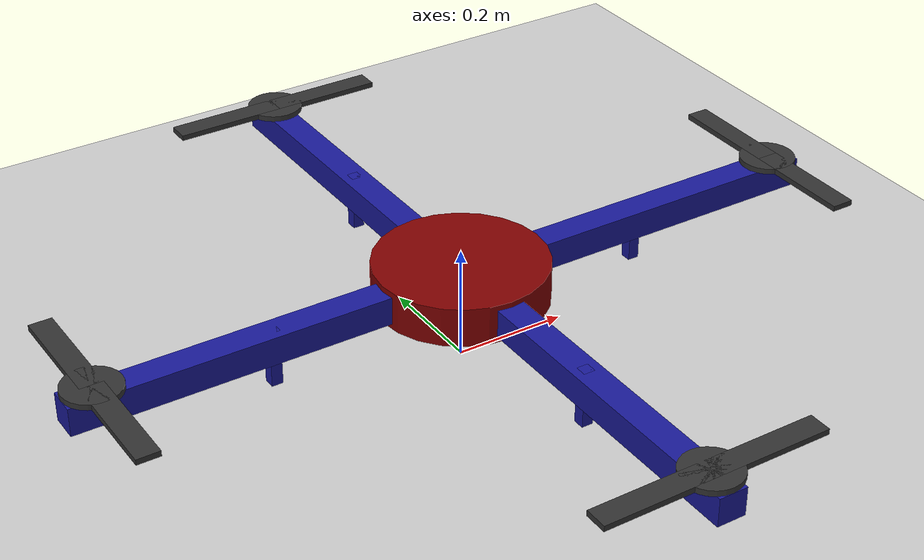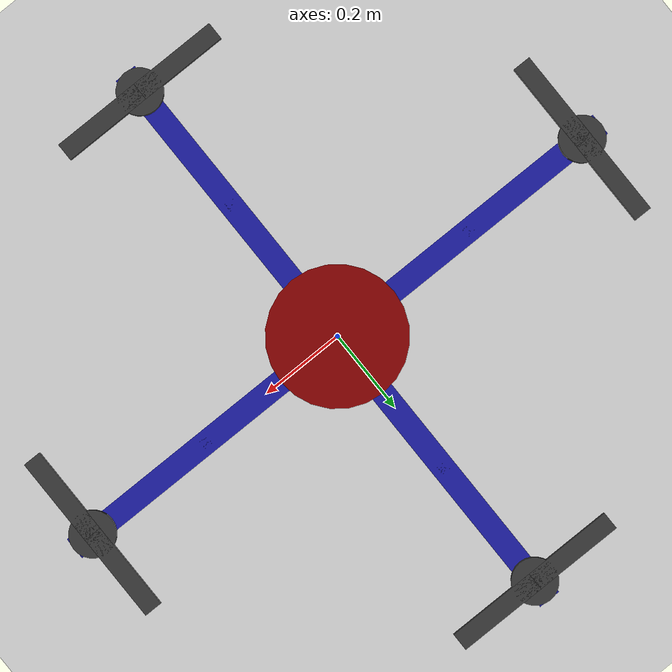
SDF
<?xml version="1.0" ?>
<sdf version="1.4">
  <world name="quadcopter_world">
    <!-- A ground plane -->
    <include>
      <uri>model://ground_plane</uri>
    </include>

    <!-- A light source -->
    <include>
      <uri>model://sun</uri>
    </include>

    <!-- Quadcopter model -->
    <model name="quadcopter">
      <pose>0 0 0 0 0 0</pose>

      <!-- Center Cylinder -->
      <link name="center_cylinder">
        <pose>0 0 0.15 0 0 0</pose>
        <collision name="collision">
          <geometry>
            <cylinder>
              <radius>0.2</radius>
              <length>0.07</length>
            </cylinder>
          </geometry>
        </collision>
        <visual name="visual">
          <geometry>
            <cylinder>
              <radius>0.15</radius>
              <length>0.07</length>
            </cylinder>
          </geometry>
          <material>
            <ambient>0.5 0 0 1</ambient>
            <diffuse>0.5 0 0 1</diffuse>
            <specular>0.5 0 0 1</specular>
            <emissive>0.5 0 0 1</emissive>
          </material>
        </visual>
      </link>

      <!-- Arm 1 -->
      <link name="arm_1">
        <pose>0.35 0 0.15 0 0 0</pose>
        <collision name="collision">
          <geometry>
            <box>
              <size>0.7 0.05 0.05</size>
            </box>
          </geometry>
        </collision>
        <visual name="visual">
          <geometry>
            <box>
              <size>0.7 0.05 0.05</size>
            </box>
          </geometry>
          <material>
            <ambient>0.1 0.1 0.6 1</ambient>
            <diffuse>0.1 0.1 0.6 1</diffuse>
            <specular>0.1 0.1 0.6 1</specular>
            <emissive>0.1 0.1 0.6 1</emissive>
          </material>
        </visual>
        <collision name="base1_collision">
          <geometry>
            <box>
              <size>0.02 0.02 0.1</size>
            </box>
          </geometry>
        </collision>
        <visual name="base_visual">
          <geometry>
            <box>
              <size>0.02 0.02 0.1</size>
            </box>
          </geometry>
          <material>
            <ambient>0.1 0.1 0.6 1</ambient>
            <diffuse>0.1 0.1 0.6 1</diffuse>
            <specular>0.1 0.1 0.6 1</specular>
            <emissive>0.1 0.1 0.6 1</emissive>
          </material>
          <pose>0 0 -0.025 0 0 0</pose>
        </visual>
      </link>

      <!-- Arm 2 -->
      <link name="arm_2">
        <pose>0 0.35 0.15 0 0 1.5708</pose>
        <collision name="collision">
          <geometry>
            <box>
              <size>0.7 0.05 0.05</size>
            </box>
          </geometry>
        </collision>
        <visual name="visual">
          <geometry>
            <box>
              <size>0.7 0.05 0.05</size>
            </box>
          </geometry>
          <material>
            <ambient>0.1 0.1 0.6 1</ambient>
            <diffuse>0.1 0.1 0.6 1</diffuse>
            <specular>0.1 0.1 0.6 1</specular>
            <emissive>0.1 0.1 0.6 1</emissive>
          </material>
        </visual>
        <collision name="base2_collision">
          <geometry>
            <box>
              <size>0.02 0.02 0.1</size>
            </box>
          </geometry>
        </collision>
        <visual name="base_visual">
          <geometry>
            <box>
              <size>0.02 0.02 0.1</size>
            </box>
          </geometry>
          <material>
            <ambient>0.1 0.1 0.6 1</ambient>
            <diffuse>0.1 0.1 0.6 1</diffuse>
            <specular>0.1 0.1 0.6 1</specular>
            <emissive>0.1 0.1 0.6 1</emissive>
          </material>
          <pose>0 0 -0.025 0 0 0</pose>
        </visual>
      </link>

      <!-- Arm 3 -->
      <link name="arm_3">
        <pose>-0.35 0 0.15 0 0 0</pose>
        <collision name="collision">
          <geometry>
            <box>
              <size>0.7 0.05 0.05</size>
            </box>
          </geometry>
        </collision>
        <visual name="visual">
          <geometry>
            <box>
              <size>0.7 0.05 0.05</size>
            </box>
          </geometry>
          <material>
            <ambient>0.1 0.1 0.6 1</ambient>
            <diffuse>0.1 0.1 0.6 1</diffuse>
            <specular>0.1 0.1 0.6 1</specular>
            <emissive>0.1 0.1 0.6 1</emissive>
          </material>
        </visual>
        <collision name="base3_collision">
          <geometry>
            <box>
              <size>0.02 0.02 0.1</size>
            </box>
          </geometry>
        </collision>
        <visual name="base_visual">
          <geometry>
            <box>
              <size>0.02 0.02 0.1</size>
            </box>
          </geometry>
          <material>
            <ambient>0.1 0.1 0.6 1</ambient>
            <diffuse>0.1 0.1 0.6 1</diffuse>
            <specular>0.1 0.1 0.6 1</specular>
            <emissive>0.1 0.1 0.6 1</emissive>
          </material>
          <pose>0 0 -0.025 0 0 0</pose>
        </visual>
      </link>

      <!-- Arm 4 -->
      <link name="arm_4">
        <pose>0 -0.35 0.15 0 0 1.5708</pose>
        <collision name="collision">
          <geometry>
            <box>
              <size>0.7 0.05 0.05</size>
            </box>
          </geometry>
        </collision>
        <visual name="visual">
          <geometry>
            <box>
              <size>0.7 0.05 0.05</size>
            </box>
          </geometry>
          <material>
            <ambient>0.1 0.1 0.6 1</ambient>
            <diffuse>0.1 0.1 0.6 1</diffuse>
            <specular>0.1 0.1 0.6 1</specular>
            <emissive>0.1 0.1 0.6 1</emissive>
          </material>
        </visual>
        <collision name="base4_collision">
          <geometry>
            <box>
              <size>0.02 0.02 0.1</size>
            </box>
          </geometry>
        </collision>
        <visual name="base_visual">
          <geometry>
            <box>
              <size>0.02 0.02 0.1</size>
            </box>
          </geometry>
          <material>
            <ambient>0.1 0.1 0.6 1</ambient>
            <diffuse>0.1 0.1 0.6 1</diffuse>
            <specular>0.1 0.1 0.6 1</specular>
            <emissive>0.1 0.1 0.6 1</emissive>
          </material>
          <pose>0 0 -0.025 0 0 0</pose>
        </visual>
      </link>

      <!-- Rotor 1 -->
      <link name="rotor_1">
        <pose>0.65 0 0.18 0 0 0</pose>
        <collision name="collision">
          <geometry>
            <cylinder>
              <radius>0.05</radius>
              <length>0.01</length>
            </cylinder>
          </geometry>
        </collision>
        <visual name="visual">
          <geometry>
            <cylinder>
              <radius>0.05</radius>
              <length>0.01</length>
            </cylinder>
          </geometry>
          <material>
            <ambient>0.2 0.2 0.2 1</ambient>
            <diffuse>0.2 0.2 0.2 1</diffuse>
            <specular>0.2 0.2 0.2 1</specular>
            <emissive>0.2 0.2 0.2 1</emissive>
          </material>
        </visual>

        <!-- Propeller blades -->
        <collision name="blade_1_collision">
          <geometry>
            <box>
              <size>0.2 0.04 0.01</size>
            </box>
          </geometry>
          <pose>0 0.1 0 0 0 1.5708</pose>
        </collision>
        <visual name="blade_1_visual">
          <geometry>
            <box>
              <size>0.2 0.04 0.01</size>
            </box>
          </geometry>
          <material>
            <ambient>0.2 0.2 0.2 1</ambient>
            <diffuse>0.2 0.2 0.2 1</diffuse>
            <specular>0.2 0.2 0.2 1</specular>
            <emissive>0.2 0.2 0.2 1</emissive>
          </material>
          <pose>0 0.1 0 0 0 1.5708</pose>
        </visual>

        <collision name="blade_2_collision">
          <geometry>
            <box>
              <size>0.2 0.04 0.01</size>
            </box>
          </geometry>
          <pose>0 -0.1 0 0 0 1.5708</pose>
        </collision>
        <visual name="blade_2_visual">
          <geometry>
            <box>
              <size>0.2 0.04 0.01</size>
            </box>
          </geometry>
          <material>
            <ambient>0.2 0.2 0.2 1</ambient>
            <diffuse>0.2 0.2 0.2 1</diffuse>
            <specular>0.2 0.2 0.2 1</specular>
            <emissive>0.2 0.2 0.2 1</emissive>
          </material>
          <pose>0 -0.1 0 0 0 1.5708</pose>
        </visual>
      </link>

      <!-- Rotor 2 -->
      <link name="rotor_2">
        <pose>0 0.65 0.18 0 0 0</pose>
        <collision name="collision">
          <geometry>
            <cylinder>
              <radius>0.05</radius>
              <length>0.01</length>
            </cylinder>
          </geometry>
        </collision>
        <visual name="visual">
          <geometry>
            <cylinder>
              <radius>0.05</radius>
              <length>0.01</length>
            </cylinder>
          </geometry>
          <material>
            <ambient>0.2 0.2 0.2 1</ambient>
            <diffuse>0.2 0.2 0.2 1</diffuse>
            <specular>0.1 0.1 0.1 1</specular>
            <emissive>0 0 0 1</emissive>
          </material>
        </visual>

        <!-- Propeller blades -->
        <collision name="blade_1_collision">
          <geometry>
            <box>
              <size>0.2 0.04 0.01</size>
            </box>
          </geometry>
          <pose>0.1 0 0 0 0 0</pose>
        </collision>
        <visual name="blade_1_visual">
          <geometry>
            <box>
              <size>0.2 0.04 0.01</size>
            </box>
          </geometry>
          <material>
            <ambient>0.2 0.2 0.2 1</ambient>
            <diffuse>0.2 0.2 0.2 1</diffuse>
            <specular>0.1 0.1 0.1 1</specular>
            <emissive>0 0 0 1</emissive>
          </material>
          <pose>0.1 0 0 0 0 0</pose>
        </visual>

        <collision name="blade_2_collision">
          <geometry>
            <box>
              <size>0.2 0.04 0.01</size>
            </box>
          </geometry>
          <pose>-0.1 0 0 0 0 0</pose>
        </collision>
        <visual name="blade_2_visual">
          <geometry>
            <box>
              <size>0.2 0.04 0.01</size>
            </box>
          </geometry>
          <material>
            <ambient>0.2 0.2 0.2 1</ambient>
            <diffuse>0.2 0.2 0.2 1</diffuse>
            <specular>0.1 0.1 0.1 1</specular>
            <emissive>0 0 0 1</emissive>
          </material>
          <pose>-0.1 0 0 0 0 0</pose>
        </visual>
      </link>

      <!-- Rotor 3 -->
      <link name="rotor_3">
        <pose>-0.65 0 0.18 0 0 0</pose>
        <collision name="collision">
          <geometry>
            <cylinder>
              <radius>0.05</radius>
              <length>0.01</length>
            </cylinder>
          </geometry>
        </collision>
        <visual name="visual">
          <geometry>
            <cylinder>
              <radius>0.05</radius>
              <length>0.01</length>
            </cylinder>
          </geometry>
          <material>
            <ambient>0.2 0.2 0.2 1</ambient>
            <diffuse>0.2 0.2 0.2 1</diffuse>
            <specular>0.2 0.2 0.2 1</specular>
            <emissive>0.2 0.2 0.2 1</emissive>
          </material>
        </visual>

        <!-- Propeller blades -->
        <collision name="blade_1_collision">
          <geometry>
            <box>
              <size>0.2 0.04 0.01</size>
            </box>
          </geometry>
          <pose>0 0.1 0 0 0 1.5708</pose>
        </collision>
        <visual name="blade_1_visual">
          <geometry>
            <box>
              <size>0.2 0.04 0.01</size>
            </box>
          </geometry>
          <material>
            <ambient>0.2 0.2 0.2 1</ambient>
            <diffuse>0.2 0.2 0.2 1</diffuse>
            <specular>0.2 0.2 0.2 1</specular>
            <emissive>0.2 0.2 0.2 1</emissive>
          </material>
          <pose>0 0.1 0 0 0 1.5708</pose>
        </visual>

        <collision name="blade_2_collision">
          <geometry>
            <box>
              <size>0.2 0.04 0.01</size>
            </box>
          </geometry>
          <pose>0 -0.1 0 0 0 1.5708</pose>
        </collision>
        <visual name="blade_2_visual">
          <geometry>
            <box>
              <size>0.2 0.04 0.01</size>
            </box>
          </geometry>
          <material>
            <ambient>0.2 0.2 0.2 1</ambient>
            <diffuse>0.2 0.2 0.2 1</diffuse>
            <specular>0.2 0.2 0.2 1</specular>
            <emissive>0.2 0.2 0.2 1</emissive>
          </material>
          <pose>0 -0.1 0 0 0 1.5708</pose>
        </visual>
      </link>

      <!-- Rotor 4 -->
      <link name="rotor_4">
        <pose>0 -0.65 0.18 0 0 0</pose>
        <collision name="collision">
          <geometry>
            <cylinder>
              <radius>0.05</radius>
              <length>0.01</length>
            </cylinder>
          </geometry>
        </collision>
        <visual name="visual">
          <geometry>
            <cylinder>
              <radius>0.05</radius>
              <length>0.01</length>
            </cylinder>
          </geometry>
          <material>
            <ambient>0.2 0.2 0.2 1</ambient>
            <diffuse>0.2 0.2 0.2 1</diffuse>
            <specular>0.1 0.1 0.1 1</specular>
            <emissive>0 0 0 1</emissive>
          </material>
        </visual>

        <!-- Propeller blades -->
        <collision name="blade_1_collision">
          <geometry>
            <box>
              <size>0.2 0.04 0.01</size>
            </box>
          </geometry>
          <pose>0.1 0 0 0 0 0</pose>
        </collision>
        <visual name="blade_1_visual">
          <geometry>
            <box>
              <size>0.2 0.04 0.01</size>
            </box>
          </geometry>
          <material>
            <ambient>0.2 0.2 0.2 1</ambient>
            <diffuse>0.2 0.2 0.2 1</diffuse>
            <specular>0.1 0.1 0.1 1</specular>
            <emissive>0 0 0 1</emissive>
          </material>
          <pose>0.1 0 0 0 0 0</pose>
        </visual>

        <collision name="blade_2_collision">
          <geometry>
            <box>
              <size>0.2 0.04 0.01</size>
            </box>
          </geometry>
          <pose>-0.1 0 0 0 0 0</pose>
        </collision>
        <visual name="blade_2_visual">
          <geometry>
            <box>
              <size>0.2 0.04 0.01</size>
            </box>
          </geometry>
          <material>
            <ambient>0.2 0.2 0.2 1</ambient>
            <diffuse>0.2 0.2 0.2 1</diffuse>
            <specular>0.1 0.1 0.1 1</specular>
            <emissive>0 0 0 1</emissive>
          </material>
          <pose>-0.1 0 0 0 0 0</pose>
        </visual>
      </link>

      <!-- Fixed Joints for Arms -->
      <joint name="arm_1_joint" type="fixed">
        <parent>center_cylinder</parent>
        <child>arm_1</child>
      </joint>

      <joint name="arm_2_joint" type="fixed">
        <parent>center_cylinder</parent>
        <child>arm_2</child>
      </joint>

      <joint name="arm_3_joint" type="fixed">
        <parent>center_cylinder</parent>
        <child>arm_3</child>
      </joint>

      <joint name="arm_4_joint" type="fixed">
        <parent>center_cylinder</parent>
        <child>arm_4</child>
      </joint>

      <!-- Joints -->
      <joint name="rotor_1_joint" type="revolute">
        <parent>arm_1</parent>
        <child>rotor_1</child>
        <axis>
          <xyz>0 0 1</xyz>
        </axis>
      </joint>

      <joint name="rotor_2_joint" type="revolute">
        <parent>arm_2</parent>
        <child>rotor_2</child>
        <axis>
          <xyz>0 0 1</xyz>
        </axis>
      </joint>

      <joint name="rotor_3_joint" type="revolute">
        <parent>arm_3</parent>
        <child>rotor_3</child>
        <axis>
          <xyz>0 0 1</xyz>
        </axis>
      </joint>

      <joint name="rotor_4_joint" type="revolute">
        <parent>arm_4</parent>
        <child>rotor_4</child>
        <axis>
          <xyz>0 0 1</xyz>
        </axis>
      </joint>

    </model>

    <!-- Physics -->
    <physics type="ode">
      <max_step_size>0.001</max_step_size>
      <real_time_factor>1</real_time_factor>
      <real_time_update_rate>100</real_time_update_rate>
    </physics>

    <!-- Gravity -->
    <gravity>0 0 0</gravity>

    <plugin name="GazeboPlugin" filename="lib/libGazeboCoSimPlugin.so"><portNumber>14581</portNumber></plugin>
  </world>
</sdf>
